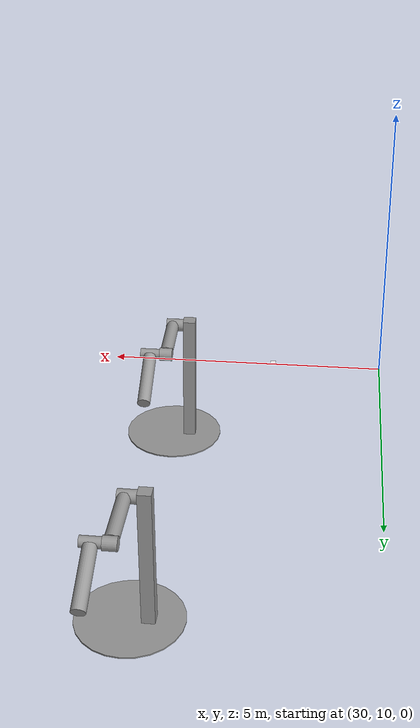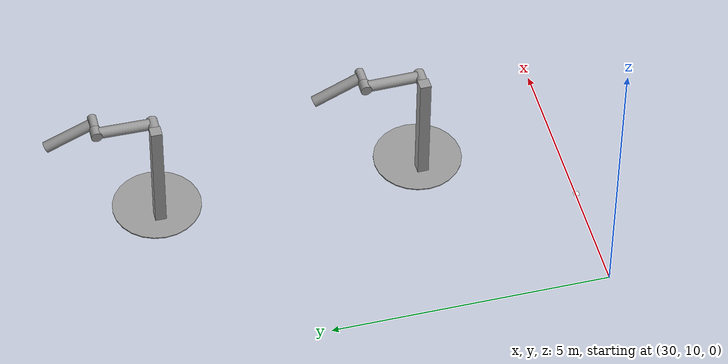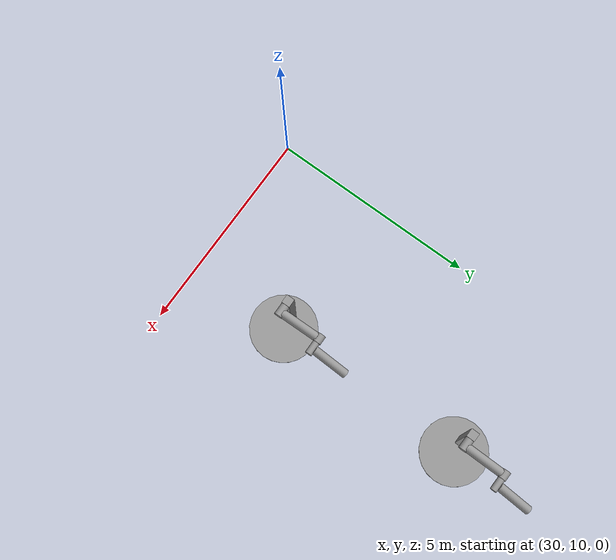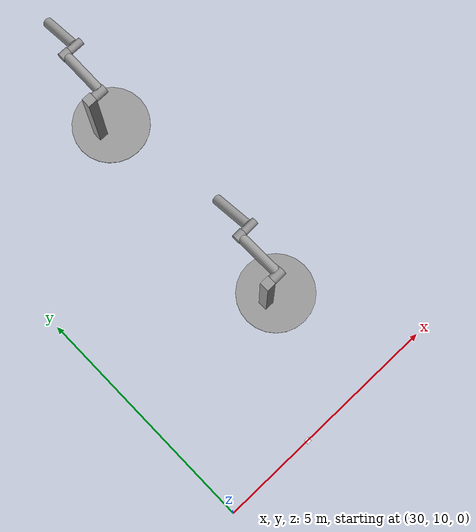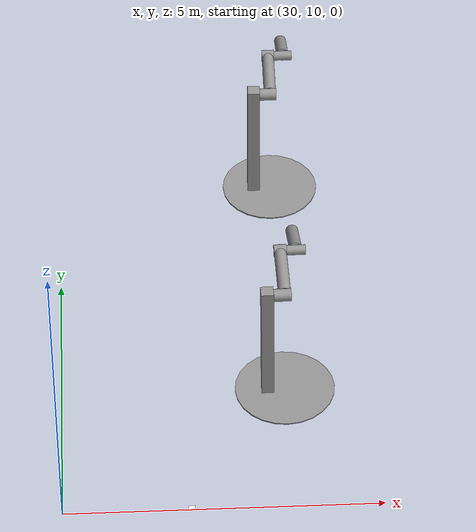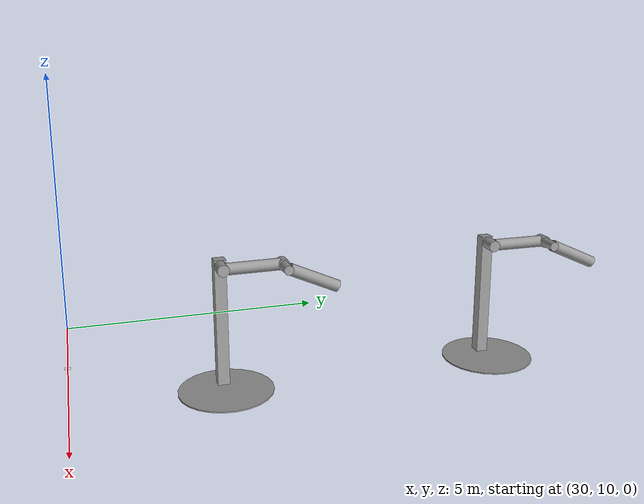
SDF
<sdf version="1.7">
 <world name="factory_ground">
  <model name="marker_1">
   <link name="marker">
    <visual name="visual">
     <geometry><box><size>0.1 0.1 1e-05</size></box></geometry>
     <material>
      <script>
       <uri>model://marker_1/materials/scripts</uri>
       <uri>model://marker_1/materials/textures</uri>
       <name>marker_material1</name>
      </script>
      <ambient>1 1 1 1</ambient>
      <diffuse>1 1 1 1</diffuse>
      <specular>0 0 0 1</specular>
      <emissive>1 1 1 0</emissive>
     </material>
    </visual>
    <collision name="collision"><geometry><box><size>0.1 0.1 1e-05</size></box></geometry></collision>
   </link>
   <link name="marker_pad">
    <pose relative_to="marker">0 0 -1e-05 0 -0 0</pose>
    <visual name="visual">
     <geometry><box><size>0.1 0.1 1e-05</size></box></geometry>
     <material>
      <lighting>1</lighting>
      <script><uri>file://media/materials/scripts/gazebo.material</uri><name>Gazebo/White</name></script>
      <ambient>0.3 0.3 0.3 1</ambient>
      <diffuse>0.7 0.7 0.7 1</diffuse>
      <specular>0.01 0.01 0.01 1</specular>
      <emissive>1 1 1 0</emissive>
     </material>
    </visual>
    <collision name="collision"><geometry><box><size>0.1 0.1 1e-05</size></box></geometry></collision>
   </link>
   <joint name="marker_JOINT_marker_pad" type="revolute">
    <parent>marker</parent>
    <child>marker_pad</child>
    <axis>
     <xyz>0 0 1</xyz>
     <limit><upper>0</upper><lower>0</lower></limit>
     <dynamics><spring_reference>0</spring_reference><spring_stiffness>0</spring_stiffness></dynamics>
    </axis>
   </joint>
   <static>1</static>
   <pose>32 10 0.046333 0 -0 0</pose>
  </model>
  <model name="double_pendulum_with_base_clone_1">
   <link name="base">
    <inertial>
     <mass>100</mass>
     <inertia><ixx>1</ixx><ixy>0</ixy><ixz>0</ixz><iyy>1</iyy><iyz>0</iyz><izz>1</izz></inertia>
    </inertial>
    <visual name="vis_plate_on_ground">
     <pose>0 0 0.01 0 -0 0</pose>
     <geometry><cylinder><radius>0.8</radius><length>0.02</length></cylinder></geometry>
     <material>
      <script><uri>file://media/materials/scripts/gazebo.material</uri><name>Gazebo/Grey</name></script>
     </material>
    </visual>
    <visual name="vis_pole">
     <pose>-0.275 0 1.1 0 -0 0</pose>
     <geometry><box><size>0.2 0.2 2.2</size></box></geometry>
     <material>
      <script><uri>file://media/materials/scripts/gazebo.material</uri><name>Gazebo/Grey</name></script>
     </material>
    </visual>
    <collision name="col_plate_on_ground">
     <pose>0 0 0.01 0 -0 0</pose>
     <geometry><cylinder><radius>0.8</radius><length>0.02</length></cylinder></geometry>
    </collision>
    <collision name="col_pole">
     <pose>-0.275 0 1.1 0 -0 0</pose>
     <geometry><box><size>0.2 0.2 2.2</size></box></geometry>
    </collision>
   </link>
   <link name="upper_link">
    <pose>0 0 2.1 -1.5708 0 0</pose>
    <inertial>
     <pose>0 0 0.5 0 -0 0</pose>
     <inertia><ixx>1</ixx><ixy>0</ixy><ixz>0</ixz><iyy>1</iyy><iyz>0</iyz><izz>1</izz></inertia>
     <mass>1</mass>
    </inertial>
    <visual name="vis_upper_joint">
     <pose>-0.05 0 0 3.14159 1.57079 3.14159</pose>
     <geometry><cylinder><radius>0.1</radius><length>0.3</length></cylinder></geometry>
     <material>
      <script><uri>file://media/materials/scripts/gazebo.material</uri><name>Gazebo/Grey</name></script>
     </material>
    </visual>
    <visual name="vis_lower_joint">
     <pose>0 0 1 3.14159 1.57079 3.14159</pose>
     <geometry><cylinder><radius>0.1</radius><length>0.2</length></cylinder></geometry>
     <material>
      <script><uri>file://media/materials/scripts/gazebo.material</uri><name>Gazebo/Grey</name></script>
     </material>
    </visual>
    <visual name="vis_cylinder">
     <pose>0 0 0.5 0 -0 0</pose>
     <geometry><cylinder><radius>0.1</radius><length>0.9</length></cylinder></geometry>
     <material>
      <script><uri>file://media/materials/scripts/gazebo.material</uri><name>Gazebo/Grey</name></script>
     </material>
    </visual>
    <collision name="col_upper_joint">
     <pose>-0.05 0 0 3.14159 1.57079 3.14159</pose>
     <geometry><cylinder><radius>0.1</radius><length>0.3</length></cylinder></geometry>
    </collision>
    <collision name="col_lower_joint">
     <pose>0 0 1 3.14159 1.57079 3.14159</pose>
     <geometry><cylinder><radius>0.1</radius><length>0.2</length></cylinder></geometry>
    </collision>
    <collision name="col_cylinder">
     <pose>0 0 0.5 0 -0 0</pose>
     <geometry><cylinder><radius>0.1</radius><length>0.9</length></cylinder></geometry>
    </collision>
   </link>
   <link name="lower_link">
    <pose>0.25 1 2.1 -2 0 0</pose>
    <inertial>
     <pose>0 0 0.5 0 -0 0</pose>
     <inertia><ixx>1</ixx><ixy>0</ixy><ixz>0</ixz><iyy>1</iyy><iyz>0</iyz><izz>1</izz></inertia>
     <mass>1</mass>
    </inertial>
    <visual name="vis_lower_joint">
     <pose>0 0 0 3.14159 1.57079 3.14159</pose>
     <geometry><cylinder><radius>0.08</radius><length>0.3</length></cylinder></geometry>
     <material>
      <script><uri>file://media/materials/scripts/gazebo.material</uri><name>Gazebo/Grey</name></script>
     </material>
    </visual>
    <visual name="vis_cylinder">
     <pose>0 0 0.5 0 -0 0</pose>
     <geometry><cylinder><radius>0.1</radius><length>0.9</length></cylinder></geometry>
     <material>
      <script><uri>file://media/materials/scripts/gazebo.material</uri><name>Gazebo/Grey</name></script>
     </material>
    </visual>
    <collision name="col_lower_joint">
     <pose>0 0 0 3.14159 1.57079 3.14159</pose>
     <geometry><cylinder><radius>0.08</radius><length>0.3</length></cylinder></geometry>
    </collision>
    <collision name="col_cylinder">
     <pose>0 0 0.5 0 -0 0</pose>
     <geometry><cylinder><radius>0.1</radius><length>0.9</length></cylinder></geometry>
    </collision>
   </link>
   <joint name="upper_joint" type="revolute">
    <parent>base</parent>
    <child>upper_link</child>
    <axis>
     <xyz>1 0 0</xyz>
     <limit><lower>-1e+16</lower><upper>1e+16</upper></limit>
     <dynamics><spring_reference>0</spring_reference><spring_stiffness>0</spring_stiffness></dynamics>
    </axis>
   </joint>
   <joint name="lower_joint" type="revolute">
    <parent>upper_link</parent>
    <child>lower_link</child>
    <axis>
     <xyz>1 0 0</xyz>
     <limit><lower>-1e+16</lower><upper>1e+16</upper></limit>
     <dynamics><spring_reference>0</spring_reference><spring_stiffness>0</spring_stiffness></dynamics>
    </axis>
   </joint>
   <pose>33.5736 12.5098 0.016295 0.00038 -0.008673 0.016665</pose>
  </model>
  <model name="double_pendulum_with_base_clone_13">
   <link name="base">
    <inertial>
     <mass>100</mass>
     <inertia><ixx>1</ixx><ixy>0</ixy><ixz>0</ixz><iyy>1</iyy><iyz>0</iyz><izz>1</izz></inertia>
    </inertial>
    <visual name="vis_plate_on_ground">
     <pose>0 0 0.01 0 -0 0</pose>
     <geometry><cylinder><radius>0.8</radius><length>0.02</length></cylinder></geometry>
     <material>
      <script><uri>file://media/materials/scripts/gazebo.material</uri><name>Gazebo/Grey</name></script>
     </material>
    </visual>
    <visual name="vis_pole">
     <pose>-0.275 0 1.1 0 -0 0</pose>
     <geometry><box><size>0.2 0.2 2.2</size></box></geometry>
     <material>
      <script><uri>file://media/materials/scripts/gazebo.material</uri><name>Gazebo/Grey</name></script>
     </material>
    </visual>
    <collision name="col_plate_on_ground">
     <pose>0 0 0.01 0 -0 0</pose>
     <geometry><cylinder><radius>0.8</radius><length>0.02</length></cylinder></geometry>
    </collision>
    <collision name="col_pole">
     <pose>-0.275 0 1.1 0 -0 0</pose>
     <geometry><box><size>0.2 0.2 2.2</size></box></geometry>
    </collision>
   </link>
   <link name="upper_link">
    <pose>0 0 2.1 -1.5708 0 0</pose>
    <inertial>
     <pose>0 0 0.5 0 -0 0</pose>
     <inertia><ixx>1</ixx><ixy>0</ixy><ixz>0</ixz><iyy>1</iyy><iyz>0</iyz><izz>1</izz></inertia>
     <mass>1</mass>
    </inertial>
    <visual name="vis_upper_joint">
     <pose>-0.05 0 0 3.14159 1.57079 3.14159</pose>
     <geometry><cylinder><radius>0.1</radius><length>0.3</length></cylinder></geometry>
     <material>
      <script><uri>file://media/materials/scripts/gazebo.material</uri><name>Gazebo/Grey</name></script>
     </material>
    </visual>
    <visual name="vis_lower_joint">
     <pose>0 0 1 3.14159 1.57079 3.14159</pose>
     <geometry><cylinder><radius>0.1</radius><length>0.2</length></cylinder></geometry>
     <material>
      <script><uri>file://media/materials/scripts/gazebo.material</uri><name>Gazebo/Grey</name></script>
     </material>
    </visual>
    <visual name="vis_cylinder">
     <pose>0 0 0.5 0 -0 0</pose>
     <geometry><cylinder><radius>0.1</radius><length>0.9</length></cylinder></geometry>
     <material>
      <script><uri>file://media/materials/scripts/gazebo.material</uri><name>Gazebo/Grey</name></script>
     </material>
    </visual>
    <collision name="col_upper_joint">
     <pose>-0.05 0 0 3.14159 1.57079 3.14159</pose>
     <geometry><cylinder><radius>0.1</radius><length>0.3</length></cylinder></geometry>
    </collision>
    <collision name="col_lower_joint">
     <pose>0 0 1 3.14159 1.57079 3.14159</pose>
     <geometry><cylinder><radius>0.1</radius><length>0.2</length></cylinder></geometry>
    </collision>
    <collision name="col_cylinder">
     <pose>0 0 0.5 0 -0 0</pose>
     <geometry><cylinder><radius>0.1</radius><length>0.9</length></cylinder></geometry>
    </collision>
   </link>
   <link name="lower_link">
    <pose>0.25 1 2.1 -2 0 0</pose>
    <inertial>
     <pose>0 0 0.5 0 -0 0</pose>
     <inertia><ixx>1</ixx><ixy>0</ixy><ixz>0</ixz><iyy>1</iyy><iyz>0</iyz><izz>1</izz></inertia>
     <mass>1</mass>
    </inertial>
    <visual name="vis_lower_joint">
     <pose>0 0 0 3.14159 1.57079 3.14159</pose>
     <geometry><cylinder><radius>0.08</radius><length>0.3</length></cylinder></geometry>
     <material>
      <script><uri>file://media/materials/scripts/gazebo.material</uri><name>Gazebo/Grey</name></script>
     </material>
    </visual>
    <visual name="vis_cylinder">
     <pose>0 0 0.5 0 -0 0</pose>
     <geometry><cylinder><radius>0.1</radius><length>0.9</length></cylinder></geometry>
     <material>
      <script><uri>file://media/materials/scripts/gazebo.material</uri><name>Gazebo/Grey</name></script>
     </material>
    </visual>
    <collision name="col_lower_joint">
     <pose>0 0 0 3.14159 1.57079 3.14159</pose>
     <geometry><cylinder><radius>0.08</radius><length>0.3</length></cylinder></geometry>
    </collision>
    <collision name="col_cylinder">
     <pose>0 0 0.5 0 -0 0</pose>
     <geometry><cylinder><radius>0.1</radius><length>0.9</length></cylinder></geometry>
    </collision>
   </link>
   <joint name="upper_joint" type="revolute">
    <parent>base</parent>
    <child>upper_link</child>
    <axis>
     <xyz>1 0 0</xyz>
     <limit><lower>-1e+16</lower><upper>1e+16</upper></limit>
     <dynamics><spring_reference>0</spring_reference><spring_stiffness>0</spring_stiffness></dynamics>
    </axis>
   </joint>
   <joint name="lower_joint" type="revolute">
    <parent>upper_link</parent>
    <child>lower_link</child>
    <axis>
     <xyz>1 0 0</xyz>
     <limit><lower>-1e+16</lower><upper>1e+16</upper></limit>
     <dynamics><spring_reference>0</spring_reference><spring_stiffness>0</spring_stiffness></dynamics>
    </axis>
   </joint>
   <pose>33.5797 17.3092 0.011949 0.000531 -8.1e-05 -0.01356</pose>
  </model>
 </world>
</sdf>
